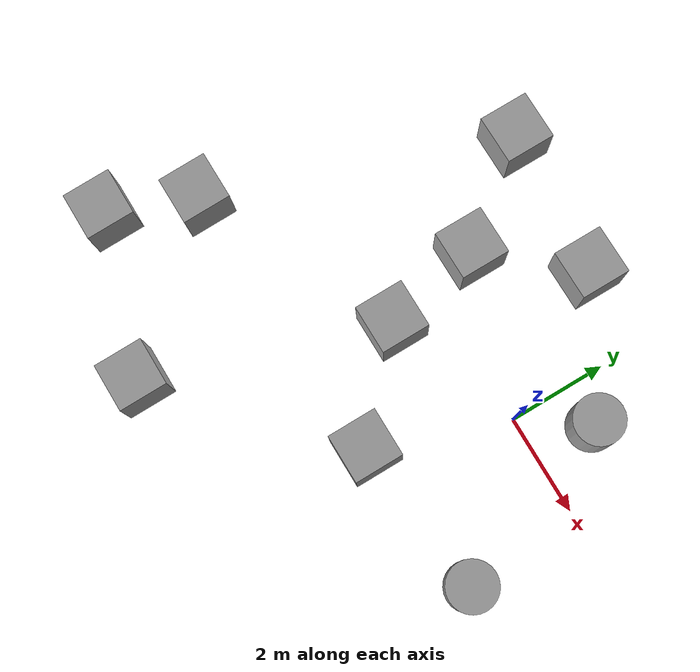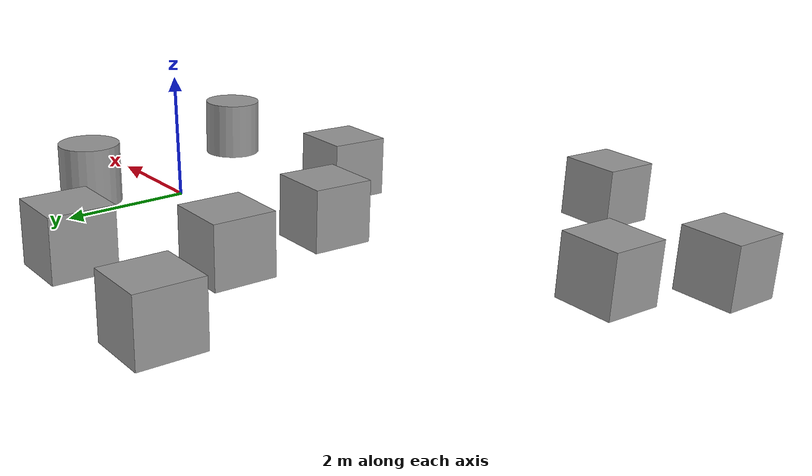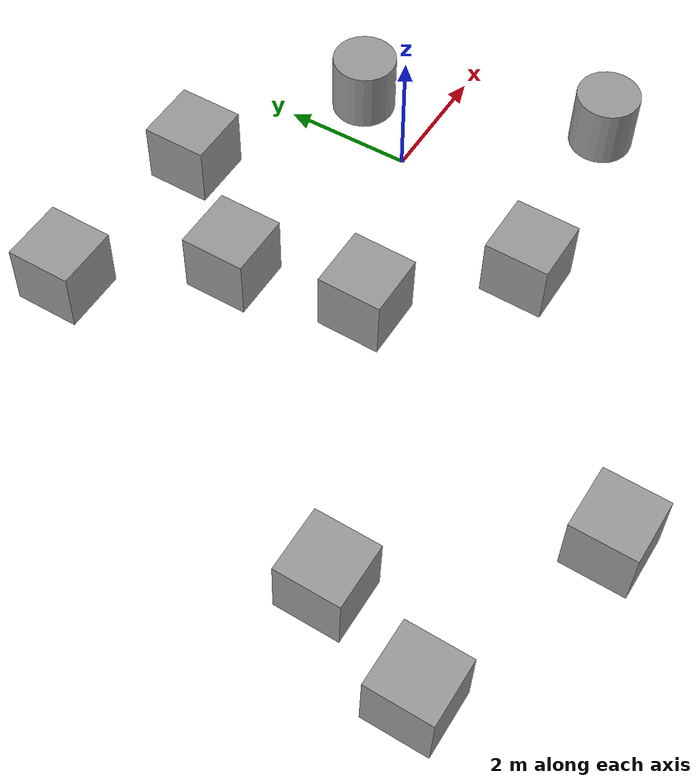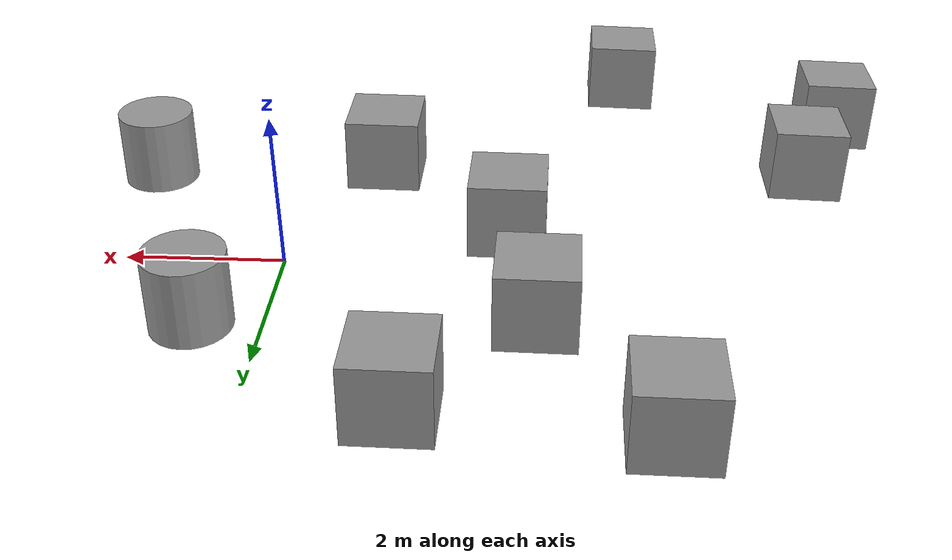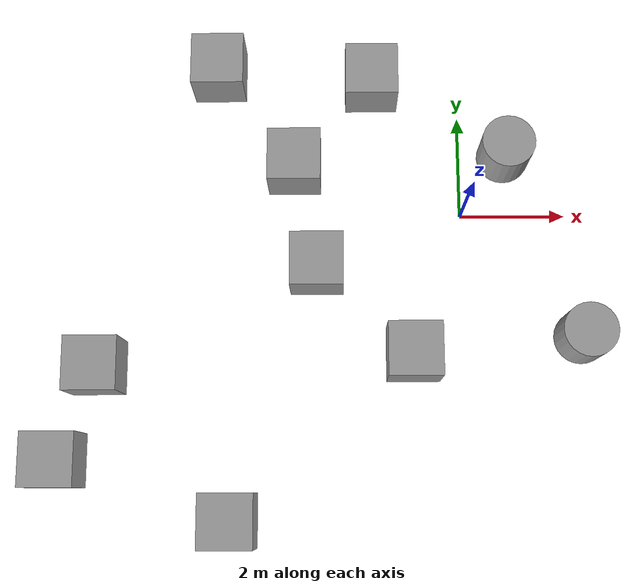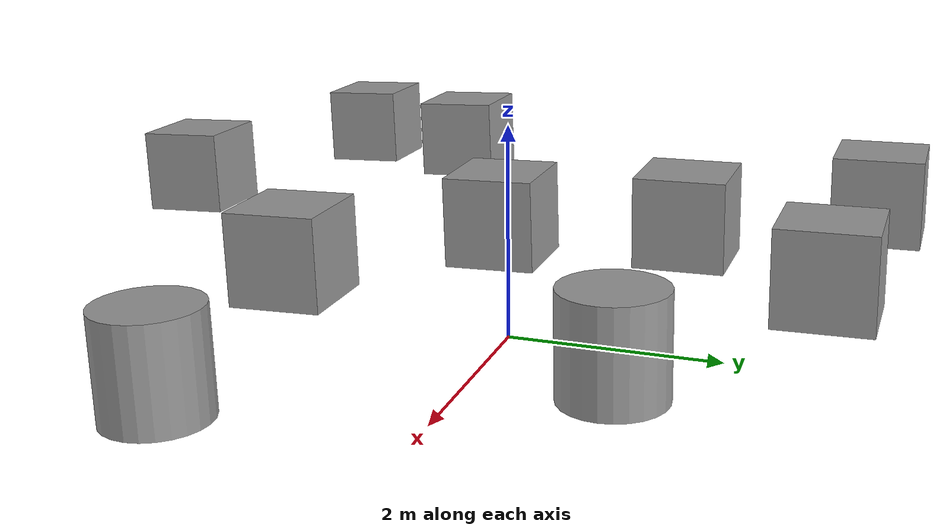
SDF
<sdf version="1.7">
 <world name="default">
  <light name="sun" type="directional">
   <pose>0 0 10 0 -0 0</pose>
   <diffuse>1 1 1 1</diffuse>
   <specular>0.2 0.2 0.2 1</specular>
   <attenuation>
    <range>1000</range>
    <constant>0.9</constant>
    <linear>0.01</linear>
    <quadratic>0.001</quadratic>
   </attenuation>
   <direction>-0.5 -0.5 -1</direction>
   <spot><inner_angle>0</inner_angle><outer_angle>0</outer_angle><falloff>0</falloff></spot>
  </light>
  <physics name="default_physics" default="0" type="ode">
   <max_step_size>0.001</max_step_size>
   <real_time_factor>1</real_time_factor>
   <real_time_update_rate>1000</real_time_update_rate>
  </physics>
  <scene><ambient>1 1 1 1</ambient><background>1 1 1 1</background><shadows>1</shadows></scene>
  <spherical_coordinates>
   <surface_model>EARTH_WGS84</surface_model>
   <latitude_deg>0</latitude_deg>
   <longitude_deg>0</longitude_deg>
   <elevation>0</elevation>
   <heading_deg>0</heading_deg>
  </spherical_coordinates>
  <gravity>0 0 -9.8</gravity>
  <magnetic_field>6e-06 2.3e-05 -4.2e-05</magnetic_field>
  <atmosphere type="adiabatic"/>
  <audio><device>default</device></audio>
  <model name="unit_box">
   <pose>-7.5699 -4.63737 0.00334 0.04576 -0.0322 0.00034</pose>
   <static>1</static>
   <link name="link">
    <inertial>
     <mass>1</mass>
     <inertia>
      <ixx>0.166667</ixx>
      <ixy>0</ixy>
      <ixz>0</ixz>
      <iyy>0.166667</iyy>
      <iyz>0</iyz>
      <izz>0.166667</izz>
     </inertia>
    </inertial>
    <collision name="collision"><geometry><box><size>1 1 1</size></box></geometry></collision>
    <visual name="visual">
     <geometry><box><size>1 1 1</size></box></geometry>
     <material>
      <script><name>Gazebo/Grey</name><uri>file://media/materials/scripts/gazebo.material</uri></script>
     </material>
    </visual>
   </link>
  </model>
  <model name="unit_cylinder">
   <pose>0.85867 1.21173 0.4119 0.01858 -0.01644 0.00016</pose>
   <static>1</static>
   <link name="link">
    <inertial>
     <mass>1</mass>
     <inertia><ixx>0.145833</ixx><ixy>0</ixy><ixz>0</ixz><iyy>0.145833</iyy><iyz>0</iyz><izz>0.125</izz></inertia>
    </inertial>
    <collision name="collision">
     <geometry><cylinder><radius>0.5</radius><length>1</length></cylinder></geometry>
    </collision>
    <visual name="visual">
     <geometry><cylinder><radius>0.5</radius><length>1</length></cylinder></geometry>
     <material>
      <script><name>Gazebo/Grey</name><uri>file://media/materials/scripts/gazebo.material</uri></script>
     </material>
    </visual>
   </link>
  </model>
  <model name="unit_box_0">
   <pose>-4.35484 -5.72873 0.04922 0.04576 -0.02858 0.00055</pose>
   <static>1</static>
   <link name="link">
    <inertial>
     <mass>1</mass>
     <inertia>
      <ixx>0.166667</ixx>
      <ixy>0</ixy>
      <ixz>0</ixz>
      <iyy>0.166667</iyy>
      <iyz>0</iyz>
      <izz>0.166667</izz>
     </inertia>
    </inertial>
    <collision name="collision"><geometry><box><size>1 1 1</size></box></geometry></collision>
    <visual name="visual">
     <geometry><box><size>1 1 1</size></box></geometry>
     <material>
      <script><name>Gazebo/Grey</name><uri>file://media/materials/scripts/gazebo.material</uri></script>
     </material>
    </visual>
   </link>
  </model>
  <model name="unit_box_1">
   <pose>-6.86477 -2.91363 0.10504 0.04572 -0.03226 0.00153</pose>
   <static>1</static>
   <link name="link">
    <inertial>
     <mass>1</mass>
     <inertia>
      <ixx>0.166667</ixx>
      <ixy>0</ixy>
      <ixz>0</ixz>
      <iyy>0.166667</iyy>
      <iyz>0</iyz>
      <izz>0.166667</izz>
     </inertia>
    </inertial>
    <collision name="collision"><geometry><box><size>1 1 1</size></box></geometry></collision>
    <visual name="visual">
     <geometry><box><size>1 1 1</size></box></geometry>
     <material>
      <script><name>Gazebo/Grey</name><uri>file://media/materials/scripts/gazebo.material</uri></script>
     </material>
    </visual>
   </link>
  </model>
  <model name="unit_box_2">
   <pose>-2.75407 -1.00523 0.28647 0.03369 -0.01644 0</pose>
   <static>1</static>
   <link name="link">
    <inertial>
     <mass>1</mass>
     <inertia>
      <ixx>0.166667</ixx>
      <ixy>0</ixy>
      <ixz>0</ixz>
      <iyy>0.166667</iyy>
      <iyz>0</iyz>
      <izz>0.166667</izz>
     </inertia>
    </inertial>
    <collision name="collision"><geometry><box><size>1 1 1</size></box></geometry></collision>
    <visual name="visual">
     <geometry><box><size>1 1 1</size></box></geometry>
     <material>
      <script><name>Gazebo/Grey</name><uri>file://media/materials/scripts/gazebo.material</uri></script>
     </material>
    </visual>
   </link>
  </model>
  <model name="unit_box_3">
   <pose>-0.95079 -2.68044 0.25965 0.03367 -0.01647 0.00091</pose>
   <static>1</static>
   <link name="link">
    <inertial>
     <mass>1</mass>
     <inertia>
      <ixx>0.166667</ixx>
      <ixy>0</ixy>
      <ixz>0</ixz>
      <iyy>0.166667</iyy>
      <iyz>0</iyz>
      <izz>0.166667</izz>
     </inertia>
    </inertial>
    <collision name="collision"><geometry><box><size>1 1 1</size></box></geometry></collision>
    <visual name="visual">
     <geometry><box><size>1 1 1</size></box></geometry>
     <material>
      <script><name>Gazebo/Grey</name><uri>file://media/materials/scripts/gazebo.material</uri></script>
     </material>
    </visual>
   </link>
  </model>
  <model name="unit_box_4">
   <pose>-3.18307 0.99795 0.34149 0.01859 -0.01643 -0.00057</pose>
   <static>1</static>
   <link name="link">
    <inertial>
     <mass>1</mass>
     <inertia>
      <ixx>0.166667</ixx>
      <ixy>0</ixy>
      <ixz>0</ixz>
      <iyy>0.166667</iyy>
      <iyz>0</iyz>
      <izz>0.166667</izz>
     </inertia>
    </inertial>
    <collision name="collision"><geometry><box><size>1 1 1</size></box></geometry></collision>
    <visual name="visual">
     <geometry><box><size>1 1 1</size></box></geometry>
     <material>
      <script><name>Gazebo/Grey</name><uri>file://media/materials/scripts/gazebo.material</uri></script>
     </material>
    </visual>
   </link>
  </model>
  <model name="unit_box_5">
   <pose>-4.66152 2.93805 0.35325 0.01858 -0.01644 0</pose>
   <static>1</static>
   <link name="link">
    <inertial>
     <mass>1</mass>
     <inertia>
      <ixx>0.166667</ixx>
      <ixy>0</ixy>
      <ixz>0</ixz>
      <iyy>0.166667</iyy>
      <iyz>0</iyz>
      <izz>0.166667</izz>
     </inertia>
    </inertial>
    <collision name="collision"><geometry><box><size>1 1 1</size></box></geometry></collision>
    <visual name="visual">
     <geometry><box><size>1 1 1</size></box></geometry>
     <material>
      <script><name>Gazebo/Grey</name><uri>file://media/materials/scripts/gazebo.material</uri></script>
     </material>
    </visual>
   </link>
  </model>
  <model name="unit_box_6">
   <pose>-1.69968 2.70287 0.39756 0.01858 -0.01644 0.0001</pose>
   <static>1</static>
   <link name="link">
    <inertial>
     <mass>1</mass>
     <inertia>
      <ixx>0.166667</ixx>
      <ixy>0</ixy>
      <ixz>0</ixz>
      <iyy>0.166667</iyy>
      <iyz>0</iyz>
      <izz>0.166667</izz>
     </inertia>
    </inertial>
    <collision name="collision"><geometry><box><size>1 1 1</size></box></geometry></collision>
    <visual name="visual">
     <geometry><box><size>1 1 1</size></box></geometry>
     <material>
      <script><name>Gazebo/Grey</name><uri>file://media/materials/scripts/gazebo.material</uri></script>
     </material>
    </visual>
   </link>
  </model>
  <model name="unit_cylinder_0">
   <pose>2.21129 -2.35318 0.32267 0.03371 -0.0164 -0.00128</pose>
   <static>1</static>
   <link name="link">
    <inertial>
     <mass>1</mass>
     <inertia><ixx>0.145833</ixx><ixy>0</ixy><ixz>0</ixz><iyy>0.145833</iyy><iyz>0</iyz><izz>0.125</izz></inertia>
    </inertial>
    <collision name="collision">
     <geometry><cylinder><radius>0.5</radius><length>1</length></cylinder></geometry>
    </collision>
    <visual name="visual">
     <geometry><cylinder><radius>0.5</radius><length>1</length></cylinder></geometry>
     <material>
      <script><name>Gazebo/Grey</name><uri>file://media/materials/scripts/gazebo.material</uri></script>
     </material>
    </visual>
   </link>
  </model>
 </world>
</sdf>
